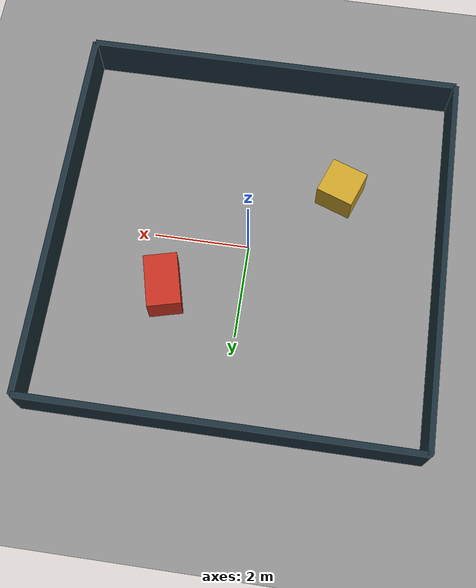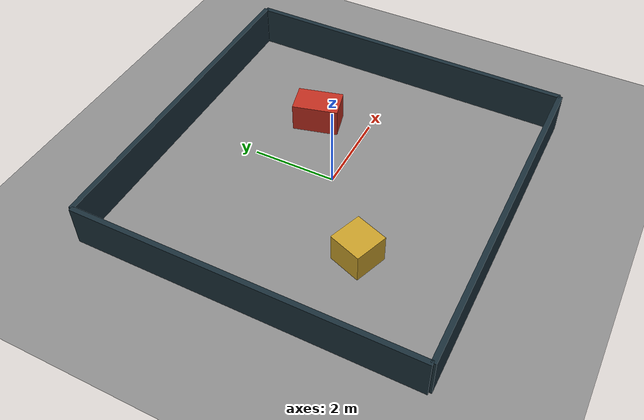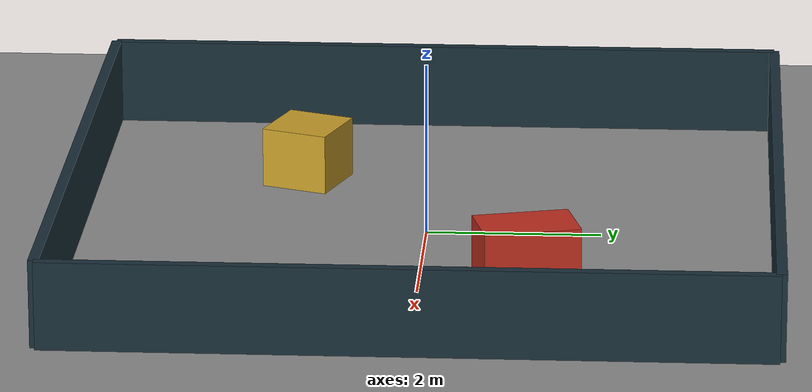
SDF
<?xml version="1.0"?>
<sdf version="1.7">
  <world name="room">
    <physics name="default_physics" type="ode">
      <max_step_size>0.003</max_step_size>
      <real_time_factor>1.0</real_time_factor>
    </physics>

    <plugin name="gz::sim::systems::Physics" filename="gz-sim-physics-system"/>
    <plugin name="gz::sim::systems::UserCommands" filename="gz-sim-user-commands-system"/>
    <plugin name="gz::sim::systems::SceneBroadcaster" filename="gz-sim-scene-broadcaster-system"/>
    <plugin name="gz::sim::systems::Contact" filename="gz-sim-contact-system"/>
    <plugin name="gz::sim::systems::Sensors" filename="gz-sim-sensors-system">
      <render_engine>ogre2</render_engine>
    </plugin>

    <scene>
      <ambient>0.7 0.7 0.7 1</ambient>
      <background>0.45 0.55 0.65 1</background>
      <shadows>false</shadows>
      <grid>true</grid>
    </scene>

    <light name="sun" type="directional">
      <pose>0 0 8 0 0 0</pose>
      <diffuse>0.9 0.9 0.9 1</diffuse>
      <specular>0.2 0.2 0.2 1</specular>
      <direction>-0.4 0.2 -0.9</direction>
    </light>

    <model name="ground_plane">
      <static>true</static>
      <link name="link">
        <collision name="collision">
          <geometry>
            <plane>
              <normal>0 0 1</normal>
              <size>12 12</size>
            </plane>
          </geometry>
        </collision>
        <visual name="visual">
          <geometry>
            <plane>
              <normal>0 0 1</normal>
              <size>12 12</size>
            </plane>
          </geometry>
          <material>
            <ambient>0.55 0.55 0.55 1</ambient>
            <diffuse>0.55 0.55 0.55 1</diffuse>
          </material>
        </visual>
      </link>
    </model>

    <model name="north_wall">
      <static>true</static>
      <pose>0 4 0.5 0 0 0</pose>
      <link name="link">
        <collision name="collision">
          <geometry>
            <box>
              <size>8 0.12 1</size>
            </box>
          </geometry>
        </collision>
        <visual name="visual">
          <geometry>
            <box>
              <size>8 0.12 1</size>
            </box>
          </geometry>
          <material>
            <ambient>0.1 0.18 0.22 1</ambient>
            <diffuse>0.1 0.18 0.22 1</diffuse>
          </material>
        </visual>
      </link>
    </model>

    <model name="south_wall">
      <static>true</static>
      <pose>0 -4 0.5 0 0 0</pose>
      <link name="link">
        <collision name="collision">
          <geometry>
            <box>
              <size>8 0.12 1</size>
            </box>
          </geometry>
        </collision>
        <visual name="visual">
          <geometry>
            <box>
              <size>8 0.12 1</size>
            </box>
          </geometry>
          <material>
            <ambient>0.1 0.18 0.22 1</ambient>
            <diffuse>0.1 0.18 0.22 1</diffuse>
          </material>
        </visual>
      </link>
    </model>

    <model name="east_wall">
      <static>true</static>
      <pose>4 0 0.5 0 0 0</pose>
      <link name="link">
        <collision name="collision">
          <geometry>
            <box>
              <size>0.12 8 1</size>
            </box>
          </geometry>
        </collision>
        <visual name="visual">
          <geometry>
            <box>
              <size>0.12 8 1</size>
            </box>
          </geometry>
          <material>
            <ambient>0.1 0.18 0.22 1</ambient>
            <diffuse>0.1 0.18 0.22 1</diffuse>
          </material>
        </visual>
      </link>
    </model>

    <model name="west_wall">
      <static>true</static>
      <pose>-4 0 0.5 0 0 0</pose>
      <link name="link">
        <collision name="collision">
          <geometry>
            <box>
              <size>0.12 8 1</size>
            </box>
          </geometry>
        </collision>
        <visual name="visual">
          <geometry>
            <box>
              <size>0.12 8 1</size>
            </box>
          </geometry>
          <material>
            <ambient>0.1 0.18 0.22 1</ambient>
            <diffuse>0.1 0.18 0.22 1</diffuse>
          </material>
        </visual>
      </link>
    </model>

    <model name="box_front_left">
      <static>true</static>
      <pose>1.6 1.2 0.35 0 0 0.25</pose>
      <link name="link">
        <collision name="collision">
          <geometry>
            <box>
              <size>0.7 1.1 0.7</size>
            </box>
          </geometry>
        </collision>
        <visual name="visual">
          <geometry>
            <box>
              <size>0.7 1.1 0.7</size>
            </box>
          </geometry>
          <material>
            <ambient>0.75 0.18 0.12 1</ambient>
            <diffuse>0.75 0.18 0.12 1</diffuse>
          </material>
        </visual>
      </link>
    </model>

    <model name="box_back_right">
      <static>true</static>
      <pose>-1.8 -1.5 0.35 0 0 -0.35</pose>
      <link name="link">
        <collision name="collision">
          <geometry>
            <box>
              <size>0.8 0.8 0.7</size>
            </box>
          </geometry>
        </collision>
        <visual name="visual">
          <geometry>
            <box>
              <size>0.8 0.8 0.7</size>
            </box>
          </geometry>
          <material>
            <ambient>0.78 0.62 0.16 1</ambient>
            <diffuse>0.78 0.62 0.16 1</diffuse>
          </material>
        </visual>
      </link>
    </model>
  </world>
</sdf>
